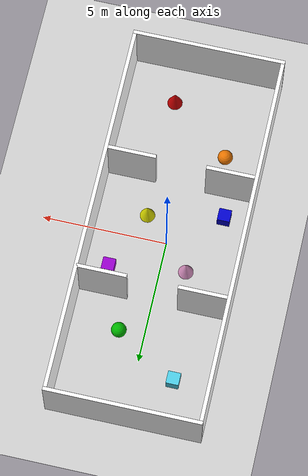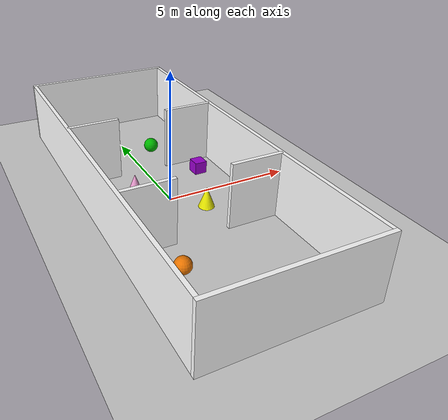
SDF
<sdf version="1.6">
 <world name="custom_world">
  <include><uri>https://fuel.gazebosim.org/1.0/OpenRobotics/models/Ground Plane</uri></include>
  <include><uri>https://fuel.gazebosim.org/1.0/OpenRobotics/models/Sun</uri></include>
  <model name="world_model">
   <pose>0 0 0 0 0 1.5708</pose>
   <link name="wall_1">
    <pose>0 -3 0 0 0 3.14159</pose>
    <visual name="wall_1_visual">
     <pose>0 0 1.25 0 0 0</pose>
     <geometry><box><size>15 0.15 2.5</size></box></geometry>
     <material>
      <pbr><metal><albedo_map>textures/bricks.png</albedo_map></metal></pbr>
      <ambient>1 1 1 1</ambient>
      <diffuse>1 1 1 1</diffuse>
      <specular>0.2 0.2 0.2 1</specular>
      <emissive>0 0 0 1</emissive>
     </material>
     <cast_shadows>0</cast_shadows>
    </visual>
    <collision name="wall_1_collision">
     <pose>0 0 1.25 0 0 0</pose>
     <geometry><box><size>15 0.15 2.5</size></box></geometry>
     <surface>
      <friction>
       <ode><mu>1</mu><mu2>1</mu2><fdir1>0 0 0</fdir1><slip1>0</slip1><slip2>0</slip2></ode>
       <torsional>
        <coefficient>1</coefficient>
        <patch_radius>0</patch_radius>
        <surface_radius>0</surface_radius>
        <use_patch_radius>1</use_patch_radius>
        <ode><slip>0</slip></ode>
       </torsional>
      </friction>
      <bounce><restitution_coefficient>0</restitution_coefficient><threshold>1e+06</threshold></bounce>
      <contact>
       <collide_without_contact>0</collide_without_contact>
       <collide_without_contact_bitmask>1</collide_without_contact_bitmask>
       <collide_bitmask>1</collide_bitmask>
       <ode>
        <soft_cfm>0</soft_cfm>
        <soft_erp>0.2</soft_erp>
        <kp>1e+13</kp>
        <kd>1</kd>
        <max_vel>0.01</max_vel>
        <min_depth>0</min_depth>
       </ode>
       <bullet>
        <split_impulse>1</split_impulse>
        <split_impulse_penetration_threshold>-0.01</split_impulse_penetration_threshold>
        <soft_cfm>0</soft_cfm>
        <soft_erp>0.2</soft_erp>
        <kp>1e+13</kp>
        <kd>1</kd>
       </bullet>
      </contact>
     </surface>
    </collision>
   </link>
   <link name="wall_2">
    <pose>-7.575 0 0 0 0 1.5708</pose>
    <visual name="wall_2_visual">
     <pose>0 0 1.25 0 0 0</pose>
     <geometry><box><size>6.15 0.15 2.5</size></box></geometry>
     <material>
      <pbr><metal><albedo_map>textures/bricks.png</albedo_map></metal></pbr>
      <ambient>1 1 1 1</ambient>
      <diffuse>1 1 1 1</diffuse>
      <specular>0.2 0.2 0.2 1</specular>
      <emissive>0 0 0 1</emissive>
     </material>
     <cast_shadows>0</cast_shadows>
    </visual>
    <collision name="wall_2_collision">
     <pose>0 0 1.25 0 0 0</pose>
     <geometry><box><size>6.15 0.15 2.5</size></box></geometry>
     <surface>
      <friction>
       <ode><mu>1</mu><mu2>1</mu2><fdir1>0 0 0</fdir1><slip1>0</slip1><slip2>0</slip2></ode>
       <torsional>
        <coefficient>1</coefficient>
        <patch_radius>0</patch_radius>
        <surface_radius>0</surface_radius>
        <use_patch_radius>1</use_patch_radius>
        <ode><slip>0</slip></ode>
       </torsional>
      </friction>
      <bounce><restitution_coefficient>0</restitution_coefficient><threshold>1e+06</threshold></bounce>
      <contact>
       <collide_without_contact>0</collide_without_contact>
       <collide_without_contact_bitmask>1</collide_without_contact_bitmask>
       <collide_bitmask>1</collide_bitmask>
       <ode>
        <soft_cfm>0</soft_cfm>
        <soft_erp>0.2</soft_erp>
        <kp>1e+13</kp>
        <kd>1</kd>
        <max_vel>0.01</max_vel>
        <min_depth>0</min_depth>
       </ode>
       <bullet>
        <split_impulse>1</split_impulse>
        <split_impulse_penetration_threshold>-0.01</split_impulse_penetration_threshold>
        <soft_cfm>0</soft_cfm>
        <soft_erp>0.2</soft_erp>
        <kp>1e+13</kp>
        <kd>1</kd>
       </bullet>
      </contact>
     </surface>
    </collision>
   </link>
   <link name="wall_3">
    <pose>0 3 0 0 0 3.14159</pose>
    <visual name="wall_3_visual">
     <pose>0 0 1.25 0 0 0</pose>
     <geometry><box><size>15 0.15 2.5</size></box></geometry>
     <material>
      <pbr><metal><albedo_map>textures/bricks.png</albedo_map></metal></pbr>
      <ambient>1 1 1 1</ambient>
      <diffuse>1 1 1 1</diffuse>
      <specular>0.2 0.2 0.2 1</specular>
      <emissive>0 0 0 1</emissive>
     </material>
     <cast_shadows>0</cast_shadows>
    </visual>
    <collision name="wall_3_collision">
     <pose>0 0 1.25 0 0 0</pose>
     <geometry><box><size>15 0.15 2.5</size></box></geometry>
     <surface>
      <friction>
       <ode><mu>1</mu><mu2>1</mu2><fdir1>0 0 0</fdir1><slip1>0</slip1><slip2>0</slip2></ode>
       <torsional>
        <coefficient>1</coefficient>
        <patch_radius>0</patch_radius>
        <surface_radius>0</surface_radius>
        <use_patch_radius>1</use_patch_radius>
        <ode><slip>0</slip></ode>
       </torsional>
      </friction>
      <bounce><restitution_coefficient>0</restitution_coefficient><threshold>1e+06</threshold></bounce>
      <contact>
       <collide_without_contact>0</collide_without_contact>
       <collide_without_contact_bitmask>1</collide_without_contact_bitmask>
       <collide_bitmask>1</collide_bitmask>
       <ode>
        <soft_cfm>0</soft_cfm>
        <soft_erp>0.2</soft_erp>
        <kp>1e+13</kp>
        <kd>1</kd>
        <max_vel>0.01</max_vel>
        <min_depth>0</min_depth>
       </ode>
       <bullet>
        <split_impulse>1</split_impulse>
        <split_impulse_penetration_threshold>-0.01</split_impulse_penetration_threshold>
        <soft_cfm>0</soft_cfm>
        <soft_erp>0.2</soft_erp>
        <kp>1e+13</kp>
        <kd>1</kd>
       </bullet>
      </contact>
     </surface>
    </collision>
   </link>
   <link name="wall_4">
    <pose>7.575 0 0 0 0 1.5708</pose>
    <visual name="wall_4_visual">
     <pose>0 0 1.25 0 0 0</pose>
     <geometry><box><size>6.15 0.15 2.5</size></box></geometry>
     <material>
      <pbr><metal><albedo_map>textures/bricks.png</albedo_map></metal></pbr>
      <ambient>1 1 1 1</ambient>
      <diffuse>1 1 1 1</diffuse>
      <specular>0.2 0.2 0.2 1</specular>
      <emissive>0 0 0 1</emissive>
     </material>
     <cast_shadows>0</cast_shadows>
    </visual>
    <collision name="wall_4_collision">
     <pose>0 0 1.25 0 0 0</pose>
     <geometry><box><size>6.15 0.15 2.5</size></box></geometry>
     <surface>
      <friction>
       <ode><mu>1</mu><mu2>1</mu2><fdir1>0 0 0</fdir1><slip1>0</slip1><slip2>0</slip2></ode>
       <torsional>
        <coefficient>1</coefficient>
        <patch_radius>0</patch_radius>
        <surface_radius>0</surface_radius>
        <use_patch_radius>1</use_patch_radius>
        <ode><slip>0</slip></ode>
       </torsional>
      </friction>
      <bounce><restitution_coefficient>0</restitution_coefficient><threshold>1e+06</threshold></bounce>
      <contact>
       <collide_without_contact>0</collide_without_contact>
       <collide_without_contact_bitmask>1</collide_without_contact_bitmask>
       <collide_bitmask>1</collide_bitmask>
       <ode>
        <soft_cfm>0</soft_cfm>
        <soft_erp>0.2</soft_erp>
        <kp>1e+13</kp>
        <kd>1</kd>
        <max_vel>0.01</max_vel>
        <min_depth>0</min_depth>
       </ode>
       <bullet>
        <split_impulse>1</split_impulse>
        <split_impulse_penetration_threshold>-0.01</split_impulse_penetration_threshold>
        <soft_cfm>0</soft_cfm>
        <soft_erp>0.2</soft_erp>
        <kp>1e+13</kp>
        <kd>1</kd>
       </bullet>
      </contact>
     </surface>
    </collision>
   </link>
   <link name="wall_5">
    <pose>2.525 0 0 0 0 1.5708</pose>
    <visual name="wall_5_visual_1">
     <pose>2 0 1.25 0 0 0</pose>
     <geometry><box><size>2 0.15 2.5</size></box></geometry>
     <material>
      <pbr><metal><albedo_map>textures/bricks.png</albedo_map></metal></pbr>
      <ambient>1 1 1 1</ambient>
      <diffuse>1 1 1 1</diffuse>
      <specular>0.2 0.2 0.2 1</specular>
      <emissive>0 0 0 1</emissive>
     </material>
     <cast_shadows>0</cast_shadows>
    </visual>
    <visual name="wall_5_visual_2">
     <pose>-2 0 1.25 0 0 0</pose>
     <geometry><box><size>2 0.15 2.5</size></box></geometry>
     <material>
      <pbr><metal><albedo_map>textures/bricks.png</albedo_map></metal></pbr>
      <ambient>1 1 1 1</ambient>
      <diffuse>1 1 1 1</diffuse>
      <specular>0.2 0.2 0.2 1</specular>
      <emissive>0 0 0 1</emissive>
     </material>
     <cast_shadows>0</cast_shadows>
    </visual>
    <collision name="wall_5_collision_1">
     <pose>2 0 1.25 0 0 0</pose>
     <geometry><box><size>2 0.15 2.5</size></box></geometry>
     <surface>
      <friction>
       <ode><mu>1</mu><mu2>1</mu2><fdir1>0 0 0</fdir1><slip1>0</slip1><slip2>0</slip2></ode>
       <torsional>
        <coefficient>1</coefficient>
        <patch_radius>0</patch_radius>
        <surface_radius>0</surface_radius>
        <use_patch_radius>1</use_patch_radius>
        <ode><slip>0</slip></ode>
       </torsional>
      </friction>
      <bounce><restitution_coefficient>0</restitution_coefficient><threshold>1e+06</threshold></bounce>
      <contact>
       <collide_without_contact>0</collide_without_contact>
       <collide_without_contact_bitmask>1</collide_without_contact_bitmask>
       <collide_bitmask>1</collide_bitmask>
       <ode>
        <soft_cfm>0</soft_cfm>
        <soft_erp>0.2</soft_erp>
        <kp>1e+13</kp>
        <kd>1</kd>
        <max_vel>0.01</max_vel>
        <min_depth>0</min_depth>
       </ode>
       <bullet>
        <split_impulse>1</split_impulse>
        <split_impulse_penetration_threshold>-0.01</split_impulse_penetration_threshold>
        <soft_cfm>0</soft_cfm>
        <soft_erp>0.2</soft_erp>
        <kp>1e+13</kp>
        <kd>1</kd>
       </bullet>
      </contact>
     </surface>
    </collision>
    <collision name="wall_5_collision_2">
     <pose>-2 0 1.25 0 0 0</pose>
     <geometry><box><size>2 0.15 2.5</size></box></geometry>
     <surface>
      <friction>
       <ode><mu>1</mu><mu2>1</mu2><fdir1>0 0 0</fdir1><slip1>0</slip1><slip2>0</slip2></ode>
       <torsional>
        <coefficient>1</coefficient>
        <patch_radius>0</patch_radius>
        <surface_radius>0</surface_radius>
        <use_patch_radius>1</use_patch_radius>
        <ode><slip>0</slip></ode>
       </torsional>
      </friction>
      <bounce><restitution_coefficient>0</restitution_coefficient><threshold>1e+06</threshold></bounce>
      <contact>
       <collide_without_contact>0</collide_without_contact>
       <collide_without_contact_bitmask>1</collide_without_contact_bitmask>
       <collide_bitmask>1</collide_bitmask>
       <ode>
        <soft_cfm>0</soft_cfm>
        <soft_erp>0.2</soft_erp>
        <kp>1e+13</kp>
        <kd>1</kd>
        <max_vel>0.01</max_vel>
        <min_depth>0</min_depth>
       </ode>
       <bullet>
        <split_impulse>1</split_impulse>
        <split_impulse_penetration_threshold>-0.01</split_impulse_penetration_threshold>
        <soft_cfm>0</soft_cfm>
        <soft_erp>0.2</soft_erp>
        <kp>1e+13</kp>
        <kd>1</kd>
       </bullet>
      </contact>
     </surface>
    </collision>
   </link>
   <link name="wall_6">
    <pose>-2.525 0 0 0 0 1.5708</pose>
    <visual name="wall_6_visual_1">
     <pose>2 0 1.25 0 0 0</pose>
     <geometry><box><size>2 0.15 2.5</size></box></geometry>
     <material>
      <pbr><metal><albedo_map>textures/bricks.png</albedo_map></metal></pbr>
      <ambient>1 1 1 1</ambient>
      <diffuse>1 1 1 1</diffuse>
      <specular>0.2 0.2 0.2 1</specular>
      <emissive>0 0 0 1</emissive>
     </material>
     <cast_shadows>0</cast_shadows>
    </visual>
    <visual name="wall_6_visual_2">
     <pose>-2 0 1.25 0 0 0</pose>
     <geometry><box><size>2 0.15 2.5</size></box></geometry>
     <material>
      <pbr><metal><albedo_map>textures/bricks.png</albedo_map></metal></pbr>
      <ambient>1 1 1 1</ambient>
      <diffuse>1 1 1 1</diffuse>
      <specular>0.2 0.2 0.2 1</specular>
      <emissive>0 0 0 1</emissive>
     </material>
     <cast_shadows>0</cast_shadows>
    </visual>
    <collision name="wall_6_collision_1">
     <pose>2 0 1.25 0 0 0</pose>
     <geometry><box><size>2 0.15 2.5</size></box></geometry>
     <surface>
      <friction>
       <ode><mu>1</mu><mu2>1</mu2><fdir1>0 0 0</fdir1><slip1>0</slip1><slip2>0</slip2></ode>
       <torsional>
        <coefficient>1</coefficient>
        <patch_radius>0</patch_radius>
        <surface_radius>0</surface_radius>
        <use_patch_radius>1</use_patch_radius>
        <ode><slip>0</slip></ode>
       </torsional>
      </friction>
      <bounce><restitution_coefficient>0</restitution_coefficient><threshold>1e+06</threshold></bounce>
      <contact>
       <collide_without_contact>0</collide_without_contact>
       <collide_without_contact_bitmask>1</collide_without_contact_bitmask>
       <collide_bitmask>1</collide_bitmask>
       <ode>
        <soft_cfm>0</soft_cfm>
        <soft_erp>0.2</soft_erp>
        <kp>1e+13</kp>
        <kd>1</kd>
        <max_vel>0.01</max_vel>
        <min_depth>0</min_depth>
       </ode>
       <bullet>
        <split_impulse>1</split_impulse>
        <split_impulse_penetration_threshold>-0.01</split_impulse_penetration_threshold>
        <soft_cfm>0</soft_cfm>
        <soft_erp>0.2</soft_erp>
        <kp>1e+13</kp>
        <kd>1</kd>
       </bullet>
      </contact>
     </surface>
    </collision>
    <collision name="wall_6_collision_2">
     <pose>-2 0 1.25 0 0 0</pose>
     <geometry><box><size>2 0.15 2.5</size></box></geometry>
     <surface>
      <friction>
       <ode><mu>1</mu><mu2>1</mu2><fdir1>0 0 0</fdir1><slip1>0</slip1><slip2>0</slip2></ode>
       <torsional>
        <coefficient>1</coefficient>
        <patch_radius>0</patch_radius>
        <surface_radius>0</surface_radius>
        <use_patch_radius>1</use_patch_radius>
        <ode><slip>0</slip></ode>
       </torsional>
      </friction>
      <bounce><restitution_coefficient>0</restitution_coefficient><threshold>1e+06</threshold></bounce>
      <contact>
       <collide_without_contact>0</collide_without_contact>
       <collide_without_contact_bitmask>1</collide_without_contact_bitmask>
       <collide_bitmask>1</collide_bitmask>
       <ode>
        <soft_cfm>0</soft_cfm>
        <soft_erp>0.2</soft_erp>
        <kp>1e+13</kp>
        <kd>1</kd>
        <max_vel>0.01</max_vel>
        <min_depth>0</min_depth>
       </ode>
       <bullet>
        <split_impulse>1</split_impulse>
        <split_impulse_penetration_threshold>-0.01</split_impulse_penetration_threshold>
        <soft_cfm>0</soft_cfm>
        <soft_erp>0.2</soft_erp>
        <kp>1e+13</kp>
        <kd>1</kd>
       </bullet>
      </contact>
     </surface>
    </collision>
   </link>
   <model name="box1">
    <pose>5.5 1.5 0.25 0 0 0</pose>
    <link name="box_link">
     <inertial>
      <inertia><ixx>0.16666</ixx><ixy>0</ixy><ixz>0</ixz><iyy>0.16666</iyy><iyz>0</iyz><izz>0.16666</izz></inertia>
      <mass>1</mass>
     </inertial>
     <collision name="box_collision"><geometry><box><size>0.5 0.5 0.5</size></box></geometry></collision>
     <visual name="box_visual">
      <geometry><box><size>0.5 0.5 0.5</size></box></geometry>
      <material>
       <ambient>0.2 0.5 0.5 1</ambient>
       <diffuse>0.3 0.8 0.9 1</diffuse>
       <specular>0.5 0.9 1 1</specular>
      </material>
     </visual>
    </link>
    <static>false</static>
   </model>
   <model name="box2">
    <pose>1.5 -2 0.25 0 0 0</pose>
    <link name="box_link">
     <inertial>
      <inertia><ixx>0.16666</ixx><ixy>0</ixy><ixz>0</ixz><iyy>0.16666</iyy><iyz>0</iyz><izz>0.16666</izz></inertia>
      <mass>1</mass>
     </inertial>
     <collision name="box_collision"><geometry><box><size>0.5 0.5 0.5</size></box></geometry></collision>
     <visual name="box_visual">
      <geometry><box><size>0.5 0.5 0.5</size></box></geometry>
      <material>
       <ambient>0.2 0 0.3 1</ambient>
       <diffuse>0.6 0 0.8 1</diffuse>
       <specular>0.8 0.5 1 1</specular>
      </material>
     </visual>
    </link>
    <static>false</static>
   </model>
   <model name="box3">
    <pose>-1.5 2 0.25 0 0 0</pose>
    <link name="box_link">
     <inertial>
      <inertia><ixx>0.16666</ixx><ixy>0</ixy><ixz>0</ixz><iyy>0.16666</iyy><iyz>0</iyz><izz>0.16666</izz></inertia>
      <mass>1</mass>
     </inertial>
     <collision name="box_collision"><geometry><box><size>0.5 0.5 0.5</size></box></geometry></collision>
     <visual name="box_visual">
      <geometry><box><size>0.5 0.5 0.5</size></box></geometry>
      <material><ambient>0 0 0.3 1</ambient><diffuse>0 0 0.8 1</diffuse><specular>0.5 0.5 1 1</specular></material>
     </visual>
    </link>
    <static>false</static>
   </model>
   <model name="sphere1">
    <pose>4.0 -1.0 0.3 0 0 0</pose>
    <link name="sphere_link">
     <inertial>
      <inertia>
       <ixx>0.10000000000000001</ixx>
       <ixy>0</ixy>
       <ixz>0</ixz>
       <iyy>0.10000000000000001</iyy>
       <iyz>0</iyz>
       <izz>0.10000000000000001</izz>
      </inertia>
      <mass>1</mass>
     </inertial>
     <collision name="sphere_collision"><geometry><sphere><radius>0.3</radius></sphere></geometry></collision>
     <visual name="sphere_visual">
      <geometry><sphere><radius>0.3</radius></sphere></geometry>
      <material><ambient>0 0.3 0 1</ambient><diffuse>0 0.7 0 1</diffuse><specular>0.5 1 0.5 1</specular></material>
     </visual>
    </link>
    <static>false</static>
   </model>
   <model name="sphere2">
    <pose>-4 1.5 0.3 0 0 0</pose>
    <link name="sphere_link">
     <inertial>
      <inertia>
       <ixx>0.10000000000000001</ixx>
       <ixy>0</ixy>
       <ixz>0</ixz>
       <iyy>0.10000000000000001</iyy>
       <iyz>0</iyz>
       <izz>0.10000000000000001</izz>
      </inertia>
      <mass>1</mass>
     </inertial>
     <collision name="sphere_collision"><geometry><sphere><radius>0.3</radius></sphere></geometry></collision>
     <visual name="sphere_visual">
      <geometry><sphere><radius>0.3</radius></sphere></geometry>
      <material>
       <ambient>0.3 0.15 0 1</ambient>
       <diffuse>0.9 0.45 0 1</diffuse>
       <specular>1 0.7 0.3 1</specular>
      </material>
     </visual>
    </link>
    <static>false</static>
   </model>
   <model name="cone1">
    <pose>1 1 0.4 0 0 0</pose>
    <link name="cone_link">
     <inertial>
      <inertia>
       <ixx>0.074999999999999997</ixx>
       <ixy>0</ixy>
       <ixz>0</ixz>
       <iyy>0.074999999999999997</iyy>
       <iyz>0</iyz>
       <izz>0.074999999999999997</izz>
      </inertia>
      <mass>1</mass>
     </inertial>
     <collision name="cone_collision">
      <geometry><cone><radius>0.3</radius><length>0.8</length></cone></geometry>
     </collision>
     <visual name="cone_visual">
      <geometry><cone><radius>0.3</radius><length>0.8</length></cone></geometry>
      <material>
       <ambient>0.6 0.4 0.6 1</ambient>
       <diffuse>0.9 0.6 0.8 1</diffuse>
       <specular>1 0.7 0.9 1</specular>
      </material>
     </visual>
    </link>
    <static>false</static>
   </model>
   <model name="cone2">
    <pose>-1 -1 0.4 0 0 0</pose>
    <link name="cone_link">
     <inertial>
      <inertia>
       <ixx>0.074999999999999997</ixx>
       <ixy>0</ixy>
       <ixz>0</ixz>
       <iyy>0.074999999999999997</iyy>
       <iyz>0</iyz>
       <izz>0.074999999999999997</izz>
      </inertia>
      <mass>1</mass>
     </inertial>
     <collision name="cone_collision">
      <geometry><cone><radius>0.3</radius><length>0.8</length></cone></geometry>
     </collision>
     <visual name="cone_visual">
      <geometry><cone><radius>0.3</radius><length>0.8</length></cone></geometry>
      <material>
       <ambient>0.3 0.3 0 1</ambient>
       <diffuse>0.9 0.9 0 1</diffuse>
       <specular>1 1 0.5 1</specular>
      </material>
     </visual>
    </link>
    <static>false</static>
   </model>
   <model name="cone3">
    <pose>-6 -1.0 0.4 0 0 0</pose>
    <link name="cone_link">
     <inertial>
      <inertia>
       <ixx>0.074999999999999997</ixx>
       <ixy>0</ixy>
       <ixz>0</ixz>
       <iyy>0.074999999999999997</iyy>
       <iyz>0</iyz>
       <izz>0.074999999999999997</izz>
      </inertia>
      <mass>1</mass>
     </inertial>
     <collision name="cone_collision">
      <geometry><cone><radius>0.3</radius><length>0.8</length></cone></geometry>
     </collision>
     <visual name="cone_visual">
      <geometry><cone><radius>0.3</radius><length>0.8</length></cone></geometry>
      <material><ambient>0.3 0 0 1</ambient><diffuse>0.8 0 0 1</diffuse><specular>1 0.5 0.5 1</specular></material>
     </visual>
    </link>
    <static>false</static>
   </model>
  </model>
 </world>
</sdf>
